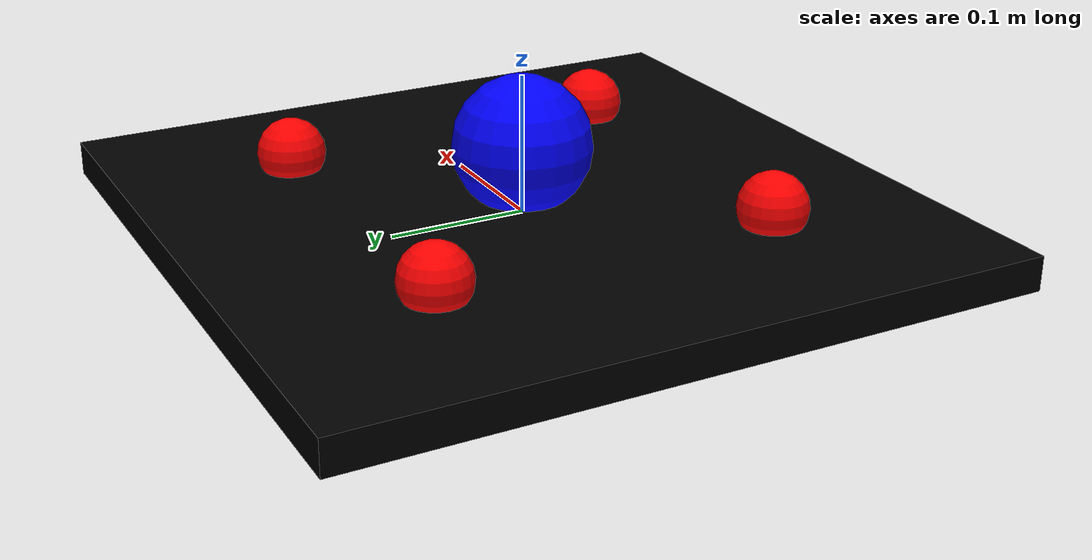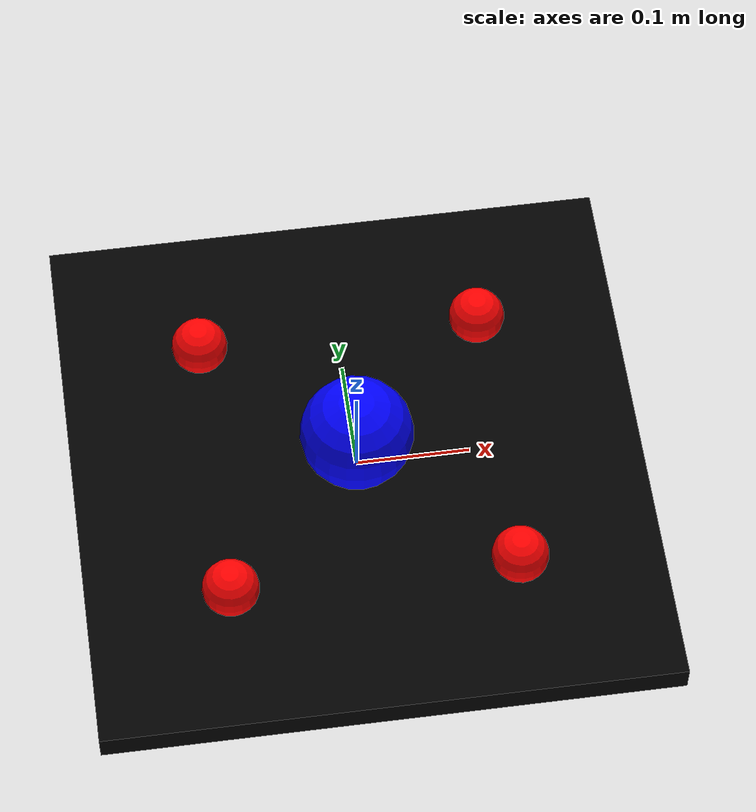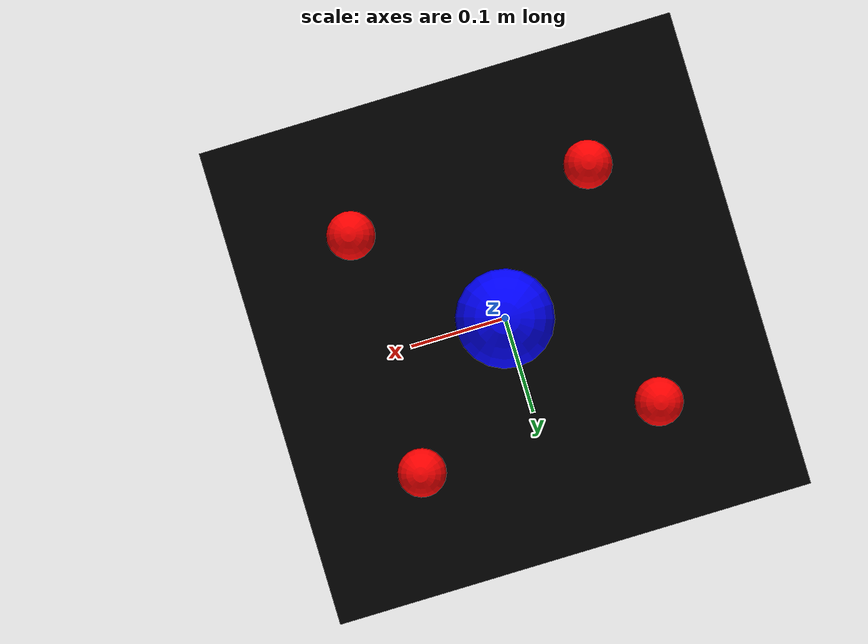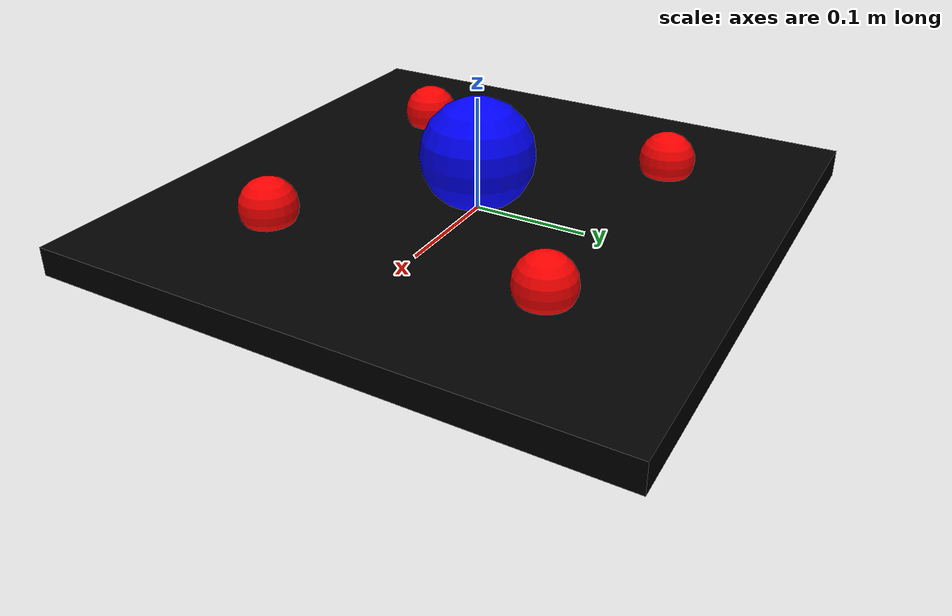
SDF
<?xml version="1.0" ?>
<sdf version="1.6">
  <model name="black_wall_with_red_dots">
    <!-- Define the black wall -->
    <link name="black_wall">
      <visual name="visual">
        <geometry>
          <box>
            <size>0.5 0.5 0.025</size>  <!-- Wall of size 0.5x0.5 meters with a thickness of 0.025 meters -->
          </box>
        </geometry>
        <material>
          <ambient>0 0 0 1</ambient>  <!-- Black color -->
          <diffuse>0 0 0 1</diffuse>
        </material>
      </visual>
      <collision name="collision">
        <geometry>
          <box>
            <size>0.5 0.5 0.025</size>
          </box>
        </geometry>
      </collision>
    </link>

    <!-- Add four red dots on the black wall -->
    <link name="dot1">
      <visual name="red_dot">
        <geometry>
          <sphere>
            <radius>0.025</radius>  <!-- Small red dot with a radius of 0.0125 meters -->
          </sphere>
        </geometry>
        <material>
          <ambient>1 0 0 1</ambient>  <!-- Red color -->
          <diffuse>1 0 0 1</diffuse>
        </material>
      </visual>
      <pose>0.125 0.125 0.025 0 0 0</pose> <!-- Position of the first dot -->
    </link>

    <link name="dot2">
      <visual name="red_dot">
        <geometry>
          <sphere>
            <radius>0.025</radius>
          </sphere>
        </geometry>
        <material>
          <ambient>1 0 0 1</ambient>  <!-- Red color -->
          <diffuse>1 0 0 1</diffuse>
        </material>
      </visual>
      <pose>-0.125 0.125 0.025 0 0 0</pose> <!-- Position of the second dot -->
    </link>

    <link name="dot3">
      <visual name="red_dot">
        <geometry>
          <sphere>
            <radius>0.025</radius>
          </sphere>
        </geometry>
        <material>
          <ambient>1 0 0 1</ambient>  <!-- Red color -->
          <diffuse>1 0 0 1</diffuse>
        </material>
      </visual>
      <pose>0.125 -0.125 0.025 0 0 0</pose> <!-- Position of the third dot -->
    </link>

    <link name="dot4">
      <visual name="red_dot">
        <geometry>
          <sphere>
            <radius>0.025</radius>
          </sphere>
        </geometry>
        <material>
          <ambient>1 0 0 1</ambient>  <!-- Red color -->
          <diffuse>1 0 0 1</diffuse>
        </material>
      </visual>
      <pose>-0.125 -0.125 0.025 0 0 0</pose> <!-- Position of the fourth dot -->
    </link>

    <link name="blue_ball">
      <visual name="blue_ball_visual">
        <geometry>
          <sphere>
            <radius>0.05</radius>  <!-- Blue ball with a radius of 0.05 meters -->
          </sphere>
        </geometry>
        <material>
          <ambient>0 0 1 1</ambient>  <!-- Blue color -->
          <diffuse>0 0 1 1</diffuse>
        </material>
      </visual>
      <pose>0 0 0.05 0 0 0</pose> <!-- Position of the blue ball in the center -->
    </link>

  </model>
</sdf>
